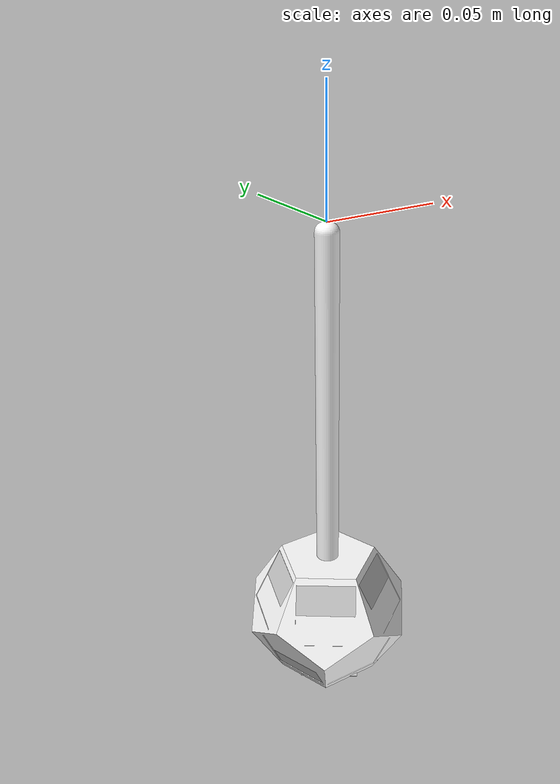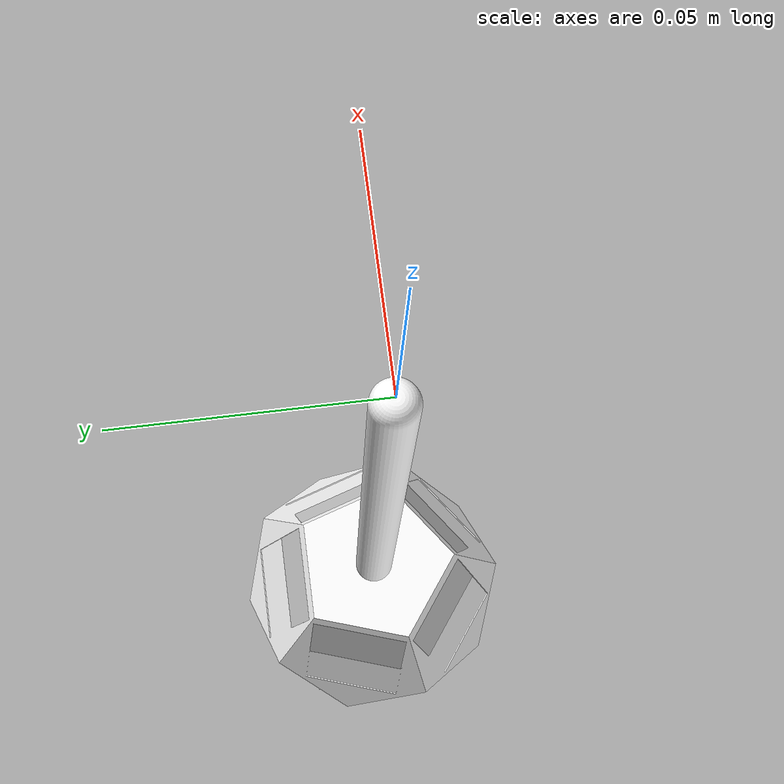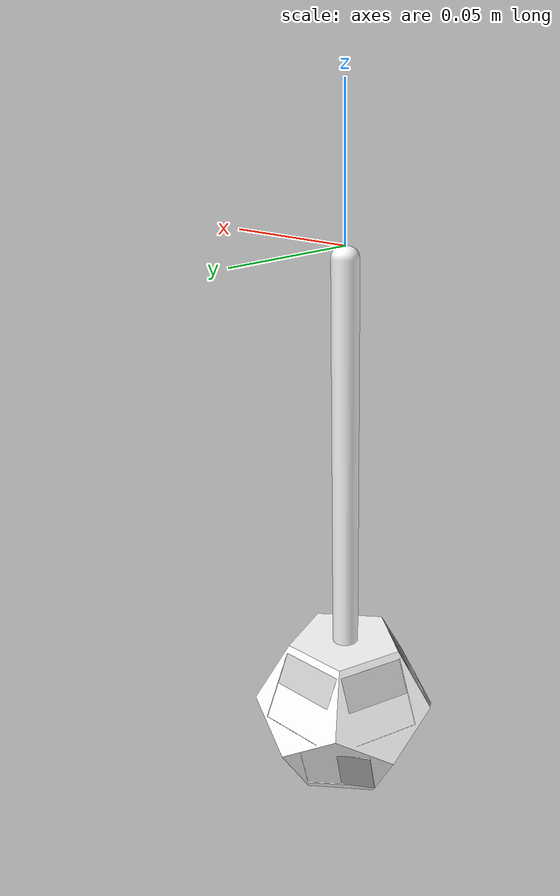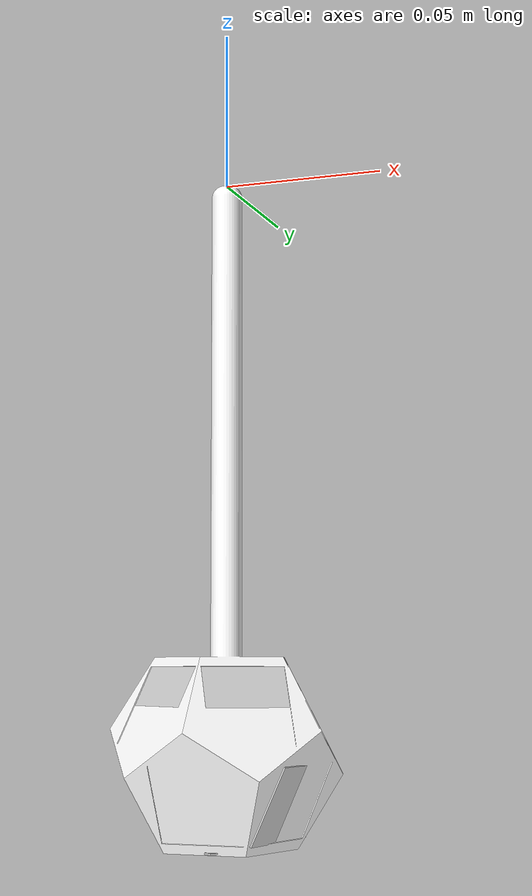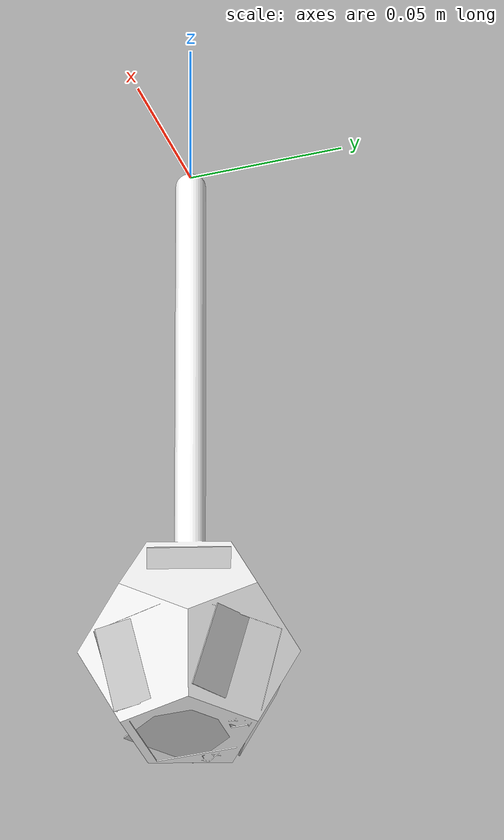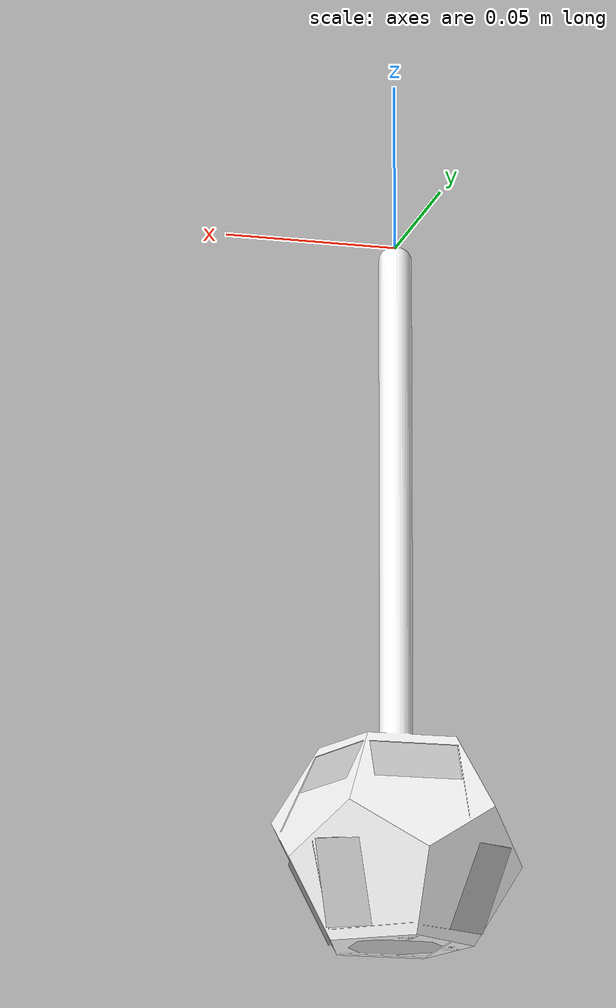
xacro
<?xml version="1.0"?>
<robot name="dodec_wand" xmlns:xacro="http://www.ros.org/wiki/xacro">
    <xacro:include filename="aruco_marker.xacro"/>
    <xacro:property name="dodecahedron_length" value="0.1476375"/>

  <material name="gray">
    <color rgba="0.8 0.8 0.8 1.0"/>
  </material>

  <link name="tool_frame"/>

  <xacro:aruco_marker id="120" parent="tool_frame">
    <origin xyz="0.0229 0.00747 ${-dodecahedron_length - 0.01374}" rpy="-1.107062 0 -1.256637"/>
    <material name="gray"/>
  </xacro:aruco_marker>

  <xacro:aruco_marker id="121" parent="tool_frame">
    <origin xyz="0.00016 0.02428 ${-dodecahedron_length - 0.01413}" rpy="-1.107062 0.0 0.0"/>
    <material name="gray"/>
  </xacro:aruco_marker>

  <xacro:aruco_marker id="122" parent="tool_frame">
    <origin xyz="-0.02299 0.00773 ${-dodecahedron_length - 0.01406}" rpy="-1.107062 0 1.256637"/>
    <material name="gray"/>
  </xacro:aruco_marker>

  <xacro:aruco_marker id="123" parent="tool_frame">
    <origin xyz="-0.01416 -0.01976 ${-dodecahedron_length - 0.01417}" rpy="-1.107062 0 2.513274"/>
    <material name="gray"/>
  </xacro:aruco_marker>

  <xacro:aruco_marker id="130" parent="tool_frame">
    <origin xyz="0.01426 -0.01972 ${-dodecahedron_length - 0.01422}" rpy="-1.107062 0.0 -2.513274"/>
    <material name="gray"/>
  </xacro:aruco_marker>

  <xacro:aruco_marker id="131" parent="tool_frame">
    <origin xyz="0.02296 -0.00742 ${-dodecahedron_length - 0.04249}" rpy="-2.03453031 0 -1.780236"/>
    <material name="gray"/>
  </xacro:aruco_marker>

  <xacro:aruco_marker id="132" parent="tool_frame">
    <origin xyz="0.01398 0.01988 ${-dodecahedron_length - 0.04215}" rpy="-2.03453031 0 -0.523599"/>
    <material name="gray"/>
  </xacro:aruco_marker>

  <xacro:aruco_marker id="133" parent="tool_frame">
    <origin xyz="-0.01433 0.01959 ${-dodecahedron_length - 0.0422}" rpy="-2.03453031 0 0.523599"/>
    <material name="gray"/>
  </xacro:aruco_marker>

  <xacro:aruco_marker id="140" parent="tool_frame">
    <origin xyz="-0.02309 -0.00777 ${-dodecahedron_length - 0.04202}" rpy="-2.034182 0 ${pi-1.256637}"/>
    <material name="gray"/>
  </xacro:aruco_marker>

  <xacro:aruco_marker id="141" parent="tool_frame">
    <origin xyz="0.00003 -0.0243 ${-dodecahedron_length - 0.04214}" rpy="-2.03453031 0 3.141593"/>
    <material name="gray"/>
  </xacro:aruco_marker>

  <xacro:aruco_marker id="142" parent="tool_frame">
    <origin xyz="0 -0.002 ${-dodecahedron_length - 0.05622}" rpy="0.0 ${pi} ${4*pi/5}"/>
    <material name="gray"/>
  </xacro:aruco_marker>

  <!-- Wand Geometry -->
  <link name="dodecahedron">
    <visual>
      <origin xyz="0 0 0"/>
      <geometry>
        <mesh filename="package://vpr_support/meshes/DodecahedronWithRod.STL"/>
      </geometry>
      <material name="white">
        <color rgba="1 1 1 1"/>
      </material>
    </visual>
    <collision>
      <origin xyz="0 0 0"/>
      <geometry>
        <mesh filename="package://vpr_support/meshes/DodecahedronWithRod.STL"/>
      </geometry>
    </collision>
  </link>

  <joint name="tool_frame_to_dodecahedron" type="fixed">
     <origin xyz="0 0 0"/>
     <parent link="tool_frame"/>
     <child link="dodecahedron"/>
  </joint>

</robot>

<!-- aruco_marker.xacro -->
<robot name="aruco_marker" xmlns:xacro="http://www.ros.org/wiki/xacro">
  <xacro:macro name="aruco_marker" params="id parent marker_size:=0.0254 marker_thickness:=0.0005 *origin *material">
    <link name="aruco_${id}">
      <visual>
        <origin xyz="0.0 0.0 ${-0.5 * marker_thickness}"/>
        <geometry>
          <box size="${marker_size} ${marker_size} ${marker_thickness}"/>
        </geometry>
        <xacro:insert_block name="material"/>
      </visual>
    </link>

    <joint name="aruco_${id}_joint" type="fixed">
      <xacro:insert_block name="origin"/>
      <parent link="${parent}"/>
      <child link="aruco_${id}"/>
    </joint>
  </xacro:macro>
</robot>
